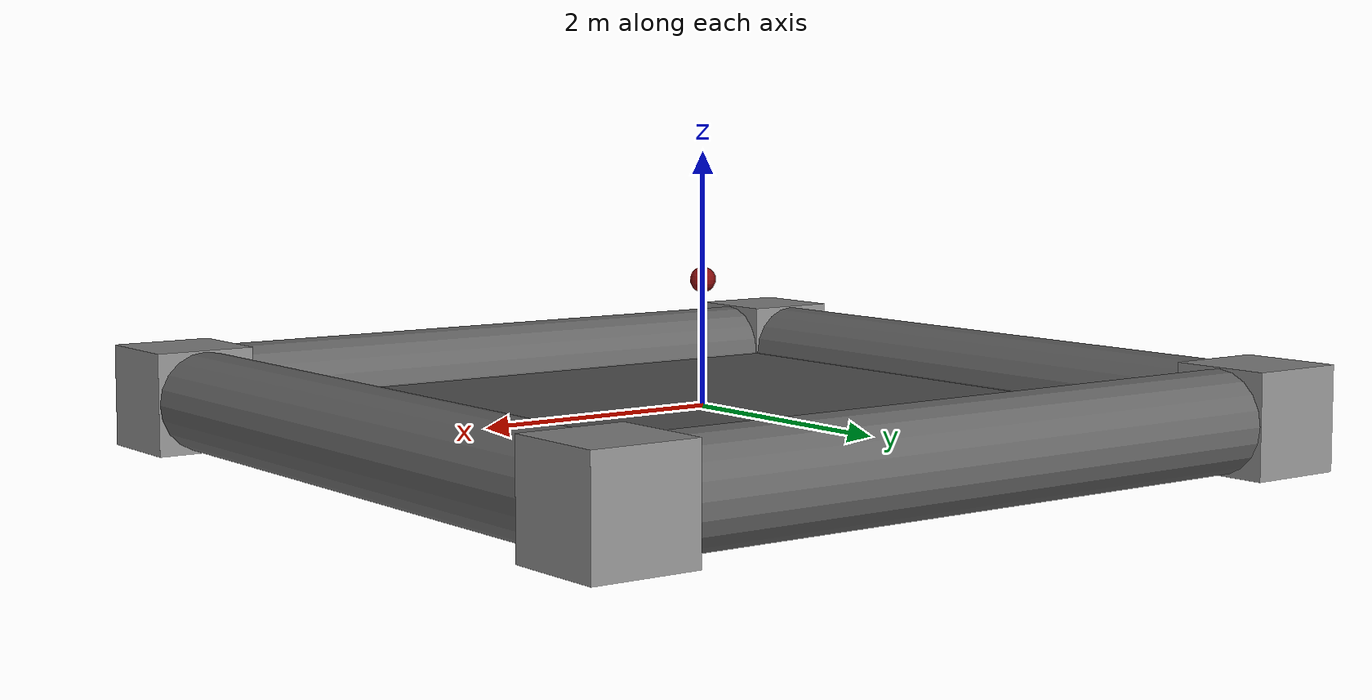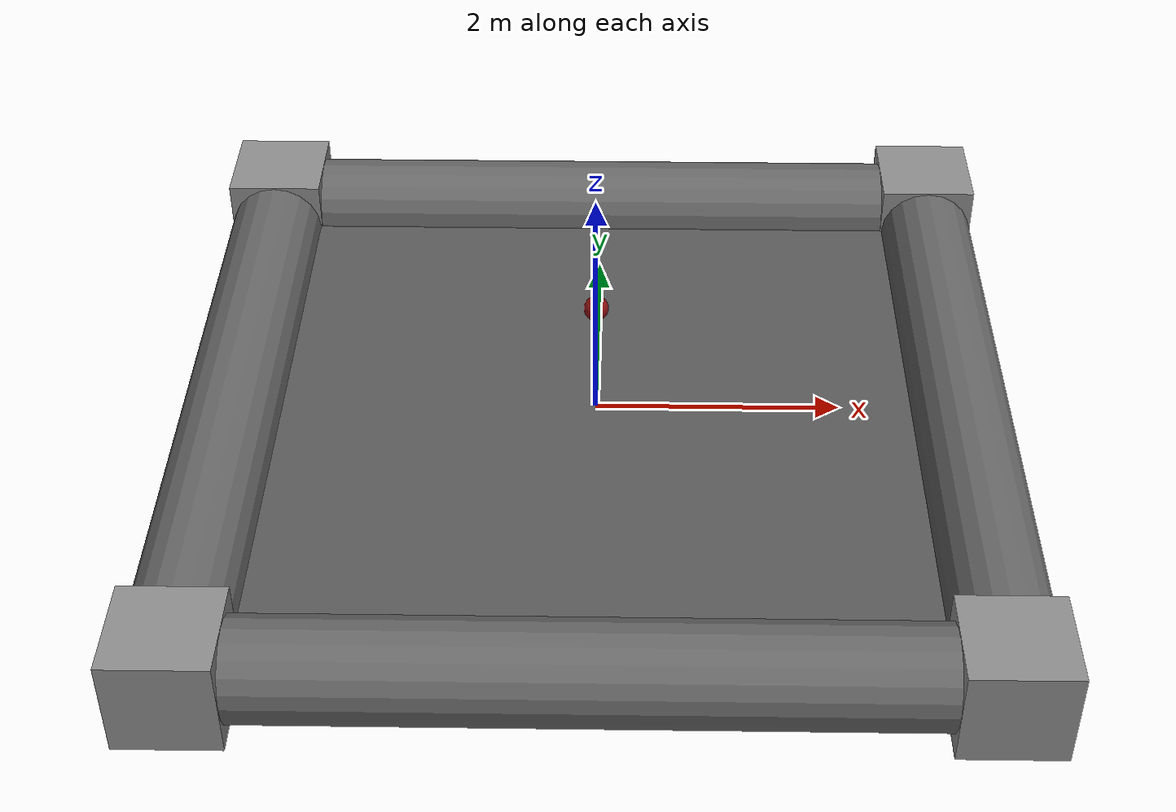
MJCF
<mujoco model="single object">
  <option timestep="0.005"/>

  <size memory="100M"/>

  <default>
    <geom solimp=".9 .9 .01"/>
    <default class="capsule">
      <geom type="capsule" material="capsule" size="0.1 0.05"/>
    </default>
    <default class="ellipsoid">
      <geom type="ellipsoid" material="ellipsoid" size="0.15 0.1 0.07"/>
    </default>
    <default class="box">
      <geom type="box" material="box" size="0.15 0.1 0.05"/>
    </default>
    <default class="cylinder">
      <geom type="cylinder" material="cylinder" size="0.1 0.05" condim="4" friction="1 .01 .01"/>
    </default>
    <default class="sphere">
      <geom type="sphere" material="sphere" size="0.1"/>
    </default>
    <default class="border">
      <geom type="capsule" size="0.4" rgba=".4 .4 .4 1"/>
    </default>
    <default class="borderpost">
      <geom type="box" size="0.41 0.41 0.41" rgba=".55 .55 .55 1"/>
    </default>
  </default>

  <asset>
    <texture type="skybox" builtin="gradient" width="512" height="512" rgb1=".4 .6 .8" rgb2="0 0 0"/>
    <texture name="texgeom" type="cube" builtin="flat" mark="cross" width="128" height="128" rgb1="0.6 0.6 0.6" rgb2="0.6 0.6 0.6" markrgb="1 1 1"/>
    <texture name="texplane" type="2d" builtin="checker" rgb1=".4 .4 .4" rgb2=".6 .6 .6" width="512" height="512"/>
    <material name="MatPlane" reflectance="0.3" texture="texplane" texrepeat="1 1" texuniform="true" rgba=".7 .7 .7 1"/>
    <material name="capsule" texture="texgeom" texuniform="true" rgba=".4 .9 .6 1"/>
    <material name="ellipsoid" texture="texgeom" texuniform="true" rgba=".4 .6 .9 1"/>
    <material name="box" texture="texgeom" texuniform="true" rgba=".4 .9 .9 1"/>
    <material name="cylinder" texture="texgeom" texuniform="true" rgba=".8 .6 .8 1"/>
    <material name="sphere" texture="texgeom" texuniform="true" rgba=".9 .1 .1 1"/>
  </asset>

  <visual>
    <quality shadowsize="4096" offsamples="8"/>
    <map znear="0.1" force="0.05"/>
  </visual>

  <statistic extent="4"/>

  <worldbody>
    <light directional="true" diffuse=".8 .8 .8" pos="0 0 10" dir="0 0 -10"/>
    <geom name="floor" type="plane" size="3 3 .5" material="MatPlane"/>

    <!-- 保留边界可视化（可选，可删除） -->
    <geom class="border" fromto="-3 3 0 3 3 0"/>
    <geom class="border" fromto="-3 -3 0 3 -3 0"/>
    <geom class="border" fromto="3 3 0 3 -3 0"/>
    <geom class="border" fromto="-3 3 0 -3 -3 0"/>
    <geom class="borderpost" pos="3 3 0"/>
    <geom class="borderpost" pos="-3 3 0"/>
    <geom class="borderpost" pos="3 -3 0"/>
    <geom class="borderpost" pos="-3 -3 0"/>

    <!-- 单个物体：球体，位于场景中心上方 -->
    <body name="single_object" pos="0 0 1">
      <freejoint/>
      <geom class="sphere"/>
    </body>

  </worldbody>
</mujoco>
